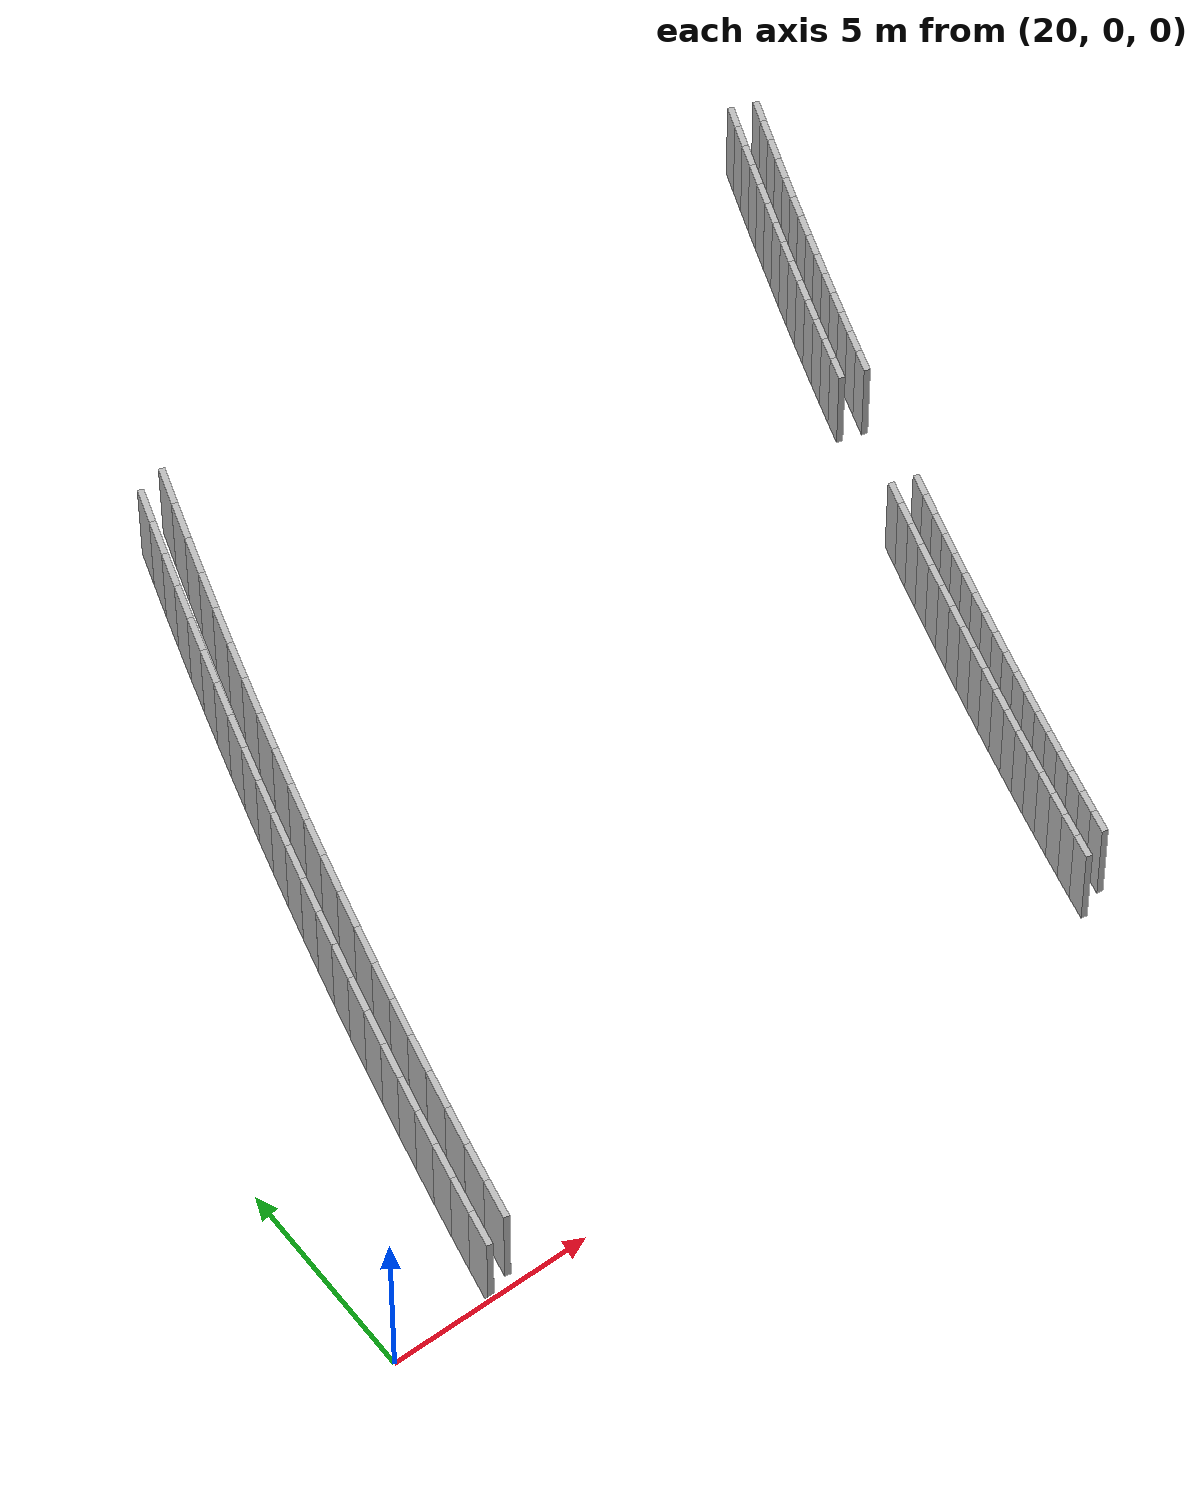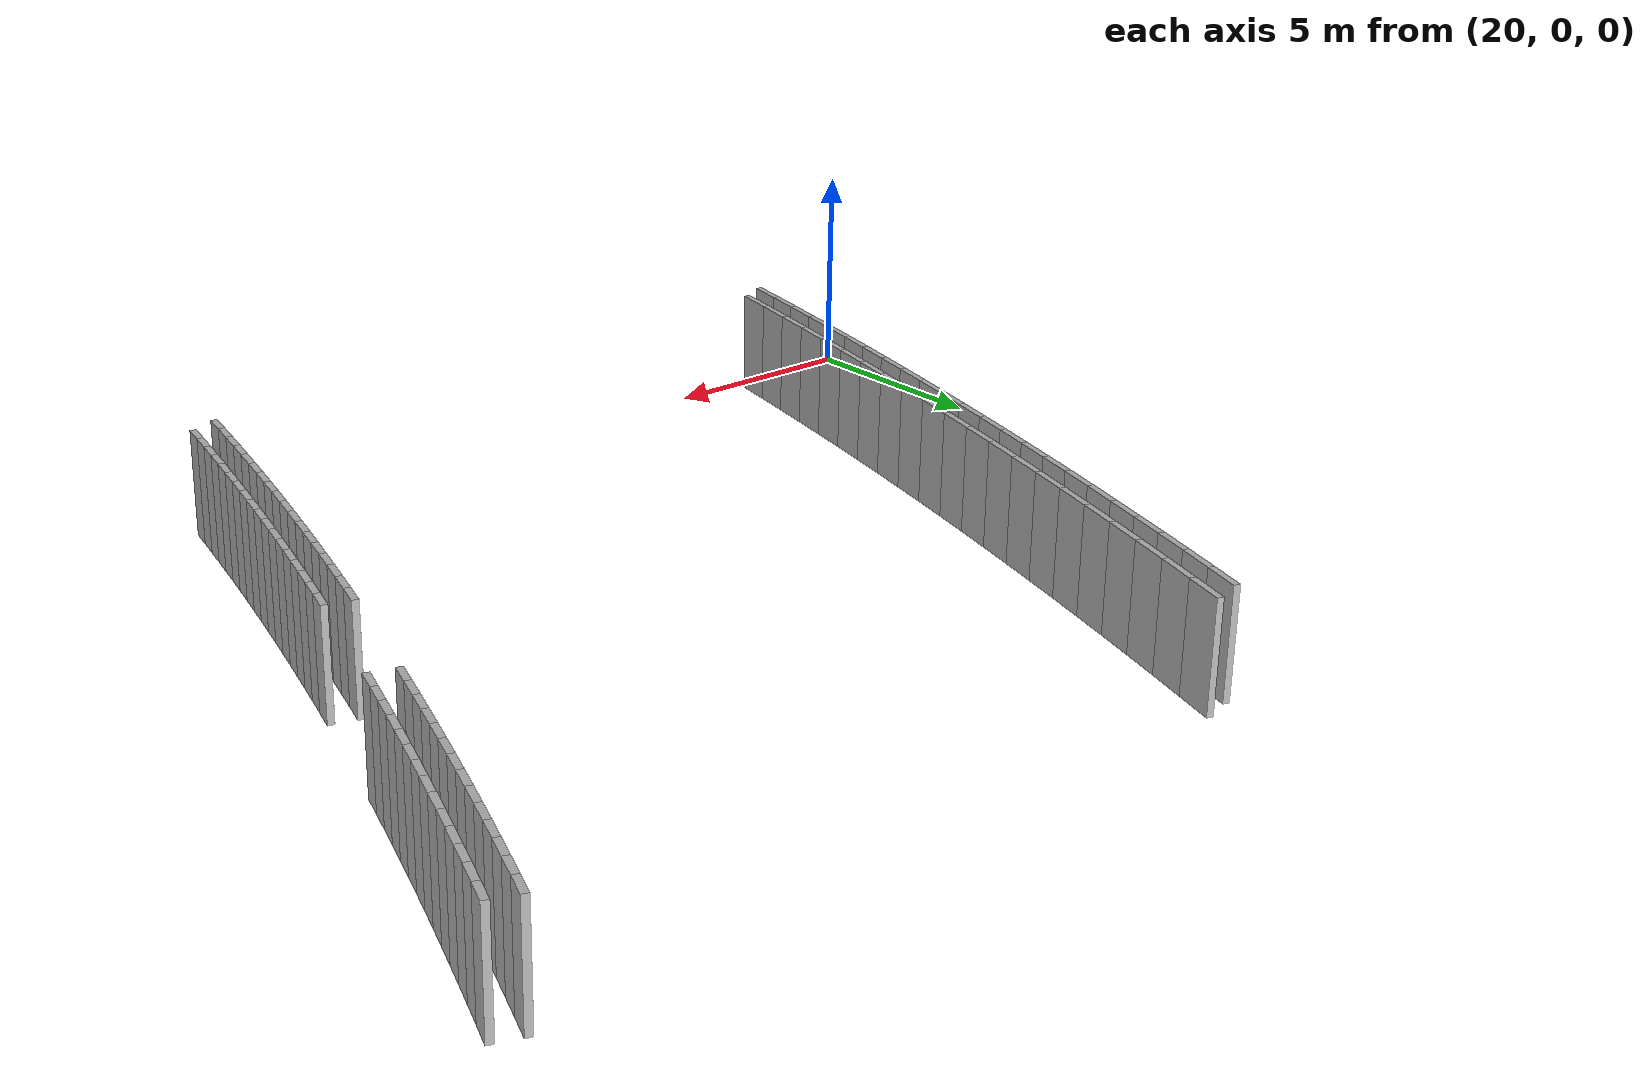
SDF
<sdf version="1.6">
 <model name="sps_0104">
  <static>1</static>
  <allow_auto_disable>0</allow_auto_disable>
  <link name="Wall6439">
   <collision name="collision"><geometry><box><size>0.560717 0.15 2.5</size></box></geometry></collision>
   <visual name="visual">
    <geometry><box><size>0.560717 0.15 2.5</size></box></geometry>
    <transparency>0.0</transparency>
   </visual>
   <pose>44.3065 20.0722 1.25 0 0 -1.92983</pose>
  </link>
  <link name="Wall6440">
   <collision name="collision"><geometry><box><size>0.561049 0.15 2.5</size></box></geometry></collision>
   <visual name="visual">
    <geometry><box><size>0.561049 0.15 2.5</size></box></geometry>
    <transparency>0.0</transparency>
   </visual>
   <pose>44.1104 19.5467 1.25 0 0 -1.92613</pose>
  </link>
  <link name="Wall6441">
   <collision name="collision"><geometry><box><size>0.560862 0.15 2.5</size></box></geometry></collision>
   <visual name="visual">
    <geometry><box><size>0.560862 0.15 2.5</size></box></geometry>
    <transparency>0.0</transparency>
   </visual>
   <pose>43.9163 19.0204 1.25 0 0 -1.92208</pose>
  </link>
  <link name="Wall6442">
   <collision name="collision"><geometry><box><size>0.560918 0.15 2.5</size></box></geometry></collision>
   <visual name="visual">
    <geometry><box><size>0.560918 0.15 2.5</size></box></geometry>
    <transparency>0.0</transparency>
   </visual>
   <pose>43.7244 18.4934 1.25 0 0 -1.91822</pose>
  </link>
  <link name="Wall6443">
   <collision name="collision"><geometry><box><size>0.561003 0.15 2.5</size></box></geometry></collision>
   <visual name="visual">
    <geometry><box><size>0.561003 0.15 2.5</size></box></geometry>
    <transparency>0.0</transparency>
   </visual>
   <pose>43.5344 17.9656 1.25 0 0 -1.91446</pose>
  </link>
  <link name="Wall6444">
   <collision name="collision"><geometry><box><size>0.560994 0.15 2.5</size></box></geometry></collision>
   <visual name="visual">
    <geometry><box><size>0.560994 0.15 2.5</size></box></geometry>
    <transparency>0.0</transparency>
   </visual>
   <pose>43.3465 17.437 1.25 0 0 -1.9102</pose>
  </link>
  <link name="Wall6445">
   <collision name="collision"><geometry><box><size>0.560923 0.15 2.5</size></box></geometry></collision>
   <visual name="visual">
    <geometry><box><size>0.560923 0.15 2.5</size></box></geometry>
    <transparency>0.0</transparency>
   </visual>
   <pose>43.1607 16.9077 1.25 0 0 -1.90655</pose>
  </link>
  <link name="Wall6446">
   <collision name="collision"><geometry><box><size>0.560953 0.15 2.5</size></box></geometry></collision>
   <visual name="visual">
    <geometry><box><size>0.560953 0.15 2.5</size></box></geometry>
    <transparency>0.0</transparency>
   </visual>
   <pose>42.977 16.3777 1.25 0 0 -1.90239</pose>
  </link>
  <link name="Wall6447">
   <collision name="collision"><geometry><box><size>0.560973 0.15 2.5</size></box></geometry></collision>
   <visual name="visual">
    <geometry><box><size>0.560973 0.15 2.5</size></box></geometry>
    <transparency>0.0</transparency>
   </visual>
   <pose>42.7955 15.8469 1.25 0 0 -1.89812</pose>
  </link>
  <link name="Wall6448">
   <collision name="collision"><geometry><box><size>0.560753 0.15 2.5</size></box></geometry></collision>
   <visual name="visual">
    <geometry><box><size>0.560753 0.15 2.5</size></box></geometry>
    <transparency>0.0</transparency>
   </visual>
   <pose>42.6161 15.3155 1.25 0 0 -1.89458</pose>
  </link>
  <link name="Wall6449">
   <collision name="collision"><geometry><box><size>0.561043 0.15 2.5</size></box></geometry></collision>
   <visual name="visual">
    <geometry><box><size>0.561043 0.15 2.5</size></box></geometry>
    <transparency>0.0</transparency>
   </visual>
   <pose>42.4387 14.7834 1.25 0 0 -1.89062</pose>
  </link>
  <link name="Wall6450">
   <collision name="collision"><geometry><box><size>0.560955 0.15 2.5</size></box></geometry></collision>
   <visual name="visual">
    <geometry><box><size>0.560955 0.15 2.5</size></box></geometry>
    <transparency>0.0</transparency>
   </visual>
   <pose>42.2634 14.2505 1.25 0 0 -1.88666</pose>
  </link>
  <link name="Wall6451">
   <collision name="collision"><geometry><box><size>0.560895 0.15 2.5</size></box></geometry></collision>
   <visual name="visual">
    <geometry><box><size>0.560895 0.15 2.5</size></box></geometry>
    <transparency>0.0</transparency>
   </visual>
   <pose>42.0901 13.717 1.25 0 0 -1.88281</pose>
  </link>
  <link name="Wall6452">
   <collision name="collision"><geometry><box><size>0.56098 0.15 2.5</size></box></geometry></collision>
   <visual name="visual">
    <geometry><box><size>0.56098 0.15 2.5</size></box></geometry>
    <transparency>0.0</transparency>
   </visual>
   <pose>41.9191 13.1828 1.25 0 0 -1.87865</pose>
  </link>
  <link name="Wall8935">
   <collision name="collision"><geometry><box><size>0.557388 0.15 2.5</size></box></geometry></collision>
   <visual name="visual">
    <geometry><box><size>0.557388 0.15 2.5</size></box></geometry>
    <transparency>0.0</transparency>
   </visual>
   <pose>41.4585 9.60307 1.25 0 0 -1.85379</pose>
  </link>
  <link name="Wall8936">
   <collision name="collision"><geometry><box><size>0.55729 0.15 2.5</size></box></geometry></collision>
   <visual name="visual">
    <geometry><box><size>0.55729 0.15 2.5</size></box></geometry>
    <transparency>0.0</transparency>
   </visual>
   <pose>41.3039 9.06758 1.25 0 0 -1.84962</pose>
  </link>
  <link name="Wall8937">
   <collision name="collision"><geometry><box><size>0.557343 0.15 2.5</size></box></geometry></collision>
   <visual name="visual">
    <geometry><box><size>0.557343 0.15 2.5</size></box></geometry>
    <transparency>0.0</transparency>
   </visual>
   <pose>41.1515 8.53151 1.25 0 0 -1.84595</pose>
  </link>
  <link name="Wall8938">
   <collision name="collision"><geometry><box><size>0.557429 0.15 2.5</size></box></geometry></collision>
   <visual name="visual">
    <geometry><box><size>0.557429 0.15 2.5</size></box></geometry>
    <transparency>0.0</transparency>
   </visual>
   <pose>41.0012 7.9948 1.25 0 0 -1.84204</pose>
  </link>
  <link name="Wall8939">
   <collision name="collision"><geometry><box><size>0.55739 0.15 2.5</size></box></geometry></collision>
   <visual name="visual">
    <geometry><box><size>0.55739 0.15 2.5</size></box></geometry>
    <transparency>0.0</transparency>
   </visual>
   <pose>40.8529 7.45747 1.25 0 0 -1.83809</pose>
  </link>
  <link name="Wall8940">
   <collision name="collision"><geometry><box><size>0.55758 0.15 2.5</size></box></geometry></collision>
   <visual name="visual">
    <geometry><box><size>0.55758 0.15 2.5</size></box></geometry>
    <transparency>0.0</transparency>
   </visual>
   <pose>40.7067 6.91948 1.25 0 0 -1.83391</pose>
  </link>
  <link name="Wall8941">
   <collision name="collision"><geometry><box><size>0.557237 0.15 2.5</size></box></geometry></collision>
   <visual name="visual">
    <geometry><box><size>0.557237 0.15 2.5</size></box></geometry>
    <transparency>0.0</transparency>
   </visual>
   <pose>40.5627 6.381 1.25 0 0 -1.83033</pose>
  </link>
  <link name="Wall8942">
   <collision name="collision"><geometry><box><size>0.557311 0.15 2.5</size></box></geometry></collision>
   <visual name="visual">
    <geometry><box><size>0.557311 0.15 2.5</size></box></geometry>
    <transparency>0.0</transparency>
   </visual>
   <pose>40.4209 5.84209 1.25 0 0 -1.82611</pose>
  </link>
  <link name="Wall8943">
   <collision name="collision"><geometry><box><size>0.557368 0.15 2.5</size></box></geometry></collision>
   <visual name="visual">
    <geometry><box><size>0.557368 0.15 2.5</size></box></geometry>
    <transparency>0.0</transparency>
   </visual>
   <pose>40.2811 5.30257 1.25 0 0 -1.82257</pose>
  </link>
  <link name="Wall8944">
   <collision name="collision"><geometry><box><size>0.557402 0.15 2.5</size></box></geometry></collision>
   <visual name="visual">
    <geometry><box><size>0.557402 0.15 2.5</size></box></geometry>
    <transparency>0.0</transparency>
   </visual>
   <pose>40.1433 4.76247 1.25 0 0 -1.81838</pose>
  </link>
  <link name="Wall8945">
   <collision name="collision"><geometry><box><size>0.557223 0.15 2.5</size></box></geometry></collision>
   <visual name="visual">
    <geometry><box><size>0.557223 0.15 2.5</size></box></geometry>
    <transparency>0.0</transparency>
   </visual>
   <pose>40.0078 4.22188 1.25 0 0 -1.81439</pose>
  </link>
  <link name="Wall8946">
   <collision name="collision"><geometry><box><size>0.55757 0.15 2.5</size></box></geometry></collision>
   <visual name="visual">
    <geometry><box><size>0.55757 0.15 2.5</size></box></geometry>
    <transparency>0.0</transparency>
   </visual>
   <pose>39.8744 3.68068 1.25 0 0 -1.81052</pose>
  </link>
  <link name="Wall8947">
   <collision name="collision"><geometry><box><size>0.557409 0.15 2.5</size></box></geometry></collision>
   <visual name="visual">
    <geometry><box><size>0.557409 0.15 2.5</size></box></geometry>
    <transparency>0.0</transparency>
   </visual>
   <pose>39.7432 3.13887 1.25 0 0 -1.80653</pose>
  </link>
  <link name="Wall8948">
   <collision name="collision"><geometry><box><size>0.557256 0.15 2.5</size></box></geometry></collision>
   <visual name="visual">
    <geometry><box><size>0.557256 0.15 2.5</size></box></geometry>
    <transparency>0.0</transparency>
   </visual>
   <pose>39.6141 2.59669 1.25 0 0 -1.80255</pose>
  </link>
  <link name="Wall8949">
   <collision name="collision"><geometry><box><size>0.557286 0.15 2.5</size></box></geometry></collision>
   <visual name="visual">
    <geometry><box><size>0.557286 0.15 2.5</size></box></geometry>
    <transparency>0.0</transparency>
   </visual>
   <pose>39.4871 2.05409 1.25 0 0 -1.79893</pose>
  </link>
  <link name="Wall8950">
   <collision name="collision"><geometry><box><size>0.557494 0.15 2.5</size></box></geometry></collision>
   <visual name="visual">
    <geometry><box><size>0.557494 0.15 2.5</size></box></geometry>
    <transparency>0.0</transparency>
   </visual>
   <pose>39.3621 1.51088 1.25 0 0 -1.79469</pose>
  </link>
  <link name="Wall8951">
   <collision name="collision"><geometry><box><size>0.557249 0.15 2.5</size></box></geometry></collision>
   <visual name="visual">
    <geometry><box><size>0.557249 0.15 2.5</size></box></geometry>
    <transparency>0.0</transparency>
   </visual>
   <pose>39.2395 0.967177 1.25 0 0 -1.79075</pose>
  </link>
  <link name="Wall8952">
   <collision name="collision"><geometry><box><size>0.557362 0.15 2.5</size></box></geometry></collision>
   <visual name="visual">
    <geometry><box><size>0.557362 0.15 2.5</size></box></geometry>
    <transparency>0.0</transparency>
   </visual>
   <pose>39.1189 0.423079 1.25 0 0 -1.78711</pose>
  </link>
  <link name="Wall8969">
   <collision name="collision"><geometry><box><size>0.557746 0.15 2.5</size></box></geometry></collision>
   <visual name="visual">
    <geometry><box><size>0.557746 0.15 2.5</size></box></geometry>
    <transparency>0.0</transparency>
   </visual>
   <pose>44.8661 19.8568 1.25 0 0 -1.92996</pose>
  </link>
  <link name="Wall8970">
   <collision name="collision"><geometry><box><size>0.557821 0.15 2.5</size></box></geometry></collision>
   <visual name="visual">
    <geometry><box><size>0.557821 0.15 2.5</size></box></geometry>
    <transparency>0.0</transparency>
   </visual>
   <pose>44.671 19.3342 1.25 0 0 -1.92594</pose>
  </link>
  <link name="Wall8971">
   <collision name="collision"><geometry><box><size>0.557718 0.15 2.5</size></box></geometry></collision>
   <visual name="visual">
    <geometry><box><size>0.557718 0.15 2.5</size></box></geometry>
    <transparency>0.0</transparency>
   </visual>
   <pose>44.478 18.8109 1.25 0 0 -1.92228</pose>
  </link>
  <link name="Wall8972">
   <collision name="collision"><geometry><box><size>0.557773 0.15 2.5</size></box></geometry></collision>
   <visual name="visual">
    <geometry><box><size>0.557773 0.15 2.5</size></box></geometry>
    <transparency>0.0</transparency>
   </visual>
   <pose>44.287 18.2869 1.25 0 0 -1.9184</pose>
  </link>
  <link name="Wall8973">
   <collision name="collision"><geometry><box><size>0.557776 0.15 2.5</size></box></geometry></collision>
   <visual name="visual">
    <geometry><box><size>0.557776 0.15 2.5</size></box></geometry>
    <transparency>0.0</transparency>
   </visual>
   <pose>44.0981 17.7621 1.25 0 0 -1.91421</pose>
  </link>
  <link name="Wall8974">
   <collision name="collision"><geometry><box><size>0.557788 0.15 2.5</size></box></geometry></collision>
   <visual name="visual">
    <geometry><box><size>0.557788 0.15 2.5</size></box></geometry>
    <transparency>0.0</transparency>
   </visual>
   <pose>43.9114 17.2365 1.25 0 0 -1.91002</pose>
  </link>
  <link name="Wall8975">
   <collision name="collision"><geometry><box><size>0.55764 0.15 2.5</size></box></geometry></collision>
   <visual name="visual">
    <geometry><box><size>0.55764 0.15 2.5</size></box></geometry>
    <transparency>0.0</transparency>
   </visual>
   <pose>43.7268 16.7102 1.25 0 0 -1.90629</pose>
  </link>
  <link name="Wall8976">
   <collision name="collision"><geometry><box><size>0.557788 0.15 2.5</size></box></geometry></collision>
   <visual name="visual">
    <geometry><box><size>0.557788 0.15 2.5</size></box></geometry>
    <transparency>0.0</transparency>
   </visual>
   <pose>43.5442 16.1832 1.25 0 0 -1.90237</pose>
  </link>
  <link name="Wall8977">
   <collision name="collision"><geometry><box><size>0.557733 0.15 2.5</size></box></geometry></collision>
   <visual name="visual">
    <geometry><box><size>0.557733 0.15 2.5</size></box></geometry>
    <transparency>0.0</transparency>
   </visual>
   <pose>43.3636 15.6555 1.25 0 0 -1.89871</pose>
  </link>
  <link name="Wall8978">
   <collision name="collision"><geometry><box><size>0.557762 0.15 2.5</size></box></geometry></collision>
   <visual name="visual">
    <geometry><box><size>0.557762 0.15 2.5</size></box></geometry>
    <transparency>0.0</transparency>
   </visual>
   <pose>43.1851 15.1271 1.25 0 0 -1.89442</pose>
  </link>
  <link name="Wall8979">
   <collision name="collision"><geometry><box><size>0.557723 0.15 2.5</size></box></geometry></collision>
   <visual name="visual">
    <geometry><box><size>0.557723 0.15 2.5</size></box></geometry>
    <transparency>0.0</transparency>
   </visual>
   <pose>43.0088 14.598 1.25 0 0 -1.89075</pose>
  </link>
  <link name="Wall8980">
   <collision name="collision"><geometry><box><size>0.557713 0.15 2.5</size></box></geometry></collision>
   <visual name="visual">
    <geometry><box><size>0.557713 0.15 2.5</size></box></geometry>
    <transparency>0.0</transparency>
   </visual>
   <pose>42.8345 14.0682 1.25 0 0 -1.88649</pose>
  </link>
  <link name="Wall8981">
   <collision name="collision"><geometry><box><size>0.557749 0.15 2.5</size></box></geometry></collision>
   <visual name="visual">
    <geometry><box><size>0.557749 0.15 2.5</size></box></geometry>
    <transparency>0.0</transparency>
   </visual>
   <pose>42.6623 13.5377 1.25 0 0 -1.88279</pose>
  </link>
  <link name="Wall8982">
   <collision name="collision"><geometry><box><size>0.557601 0.15 2.5</size></box></geometry></collision>
   <visual name="visual">
    <geometry><box><size>0.557601 0.15 2.5</size></box></geometry>
    <transparency>0.0</transparency>
   </visual>
   <pose>42.4922 13.0066 1.25 0 0 -1.87874</pose>
  </link>
  <link name="Wall24379">
   <collision name="collision"><geometry><box><size>0.894609 0.15 2.5</size></box></geometry></collision>
   <visual name="visual">
    <geometry><box><size>0.894609 0.15 2.5</size></box></geometry>
    <transparency>0.0</transparency>
   </visual>
   <pose>27.5325 19.4188 1.25 0 0 -1.88866</pose>
  </link>
  <link name="Wall24380">
   <collision name="collision"><geometry><box><size>0.894757 0.15 2.5</size></box></geometry></collision>
   <visual name="visual">
    <geometry><box><size>0.894757 0.15 2.5</size></box></geometry>
    <transparency>0.0</transparency>
   </visual>
   <pose>27.2551 18.5682 1.25 0 0 -1.88323</pose>
  </link>
  <link name="Wall24381">
   <collision name="collision"><geometry><box><size>0.894741 0.15 2.5</size></box></geometry></collision>
   <visual name="visual">
    <geometry><box><size>0.894741 0.15 2.5</size></box></geometry>
    <transparency>0.0</transparency>
   </visual>
   <pose>26.9825 17.716 1.25 0 0 -1.87758</pose>
  </link>
  <link name="Wall24382">
   <collision name="collision"><geometry><box><size>0.894641 0.15 2.5</size></box></geometry></collision>
   <visual name="visual">
    <geometry><box><size>0.894641 0.15 2.5</size></box></geometry>
    <transparency>0.0</transparency>
   </visual>
   <pose>26.7148 16.8623 1.25 0 0 -1.87175</pose>
  </link>
  <link name="Wall24383">
   <collision name="collision"><geometry><box><size>0.894683 0.15 2.5</size></box></geometry></collision>
   <visual name="visual">
    <geometry><box><size>0.894683 0.15 2.5</size></box></geometry>
    <transparency>0.0</transparency>
   </visual>
   <pose>26.452 16.0071 1.25 0 0 -1.8661</pose>
  </link>
  <link name="Wall24384">
   <collision name="collision"><geometry><box><size>0.894713 0.15 2.5</size></box></geometry></collision>
   <visual name="visual">
    <geometry><box><size>0.894713 0.15 2.5</size></box></geometry>
    <transparency>0.0</transparency>
   </visual>
   <pose>26.1941 15.1504 1.25 0 0 -1.86053</pose>
  </link>
  <link name="Wall24385">
   <collision name="collision"><geometry><box><size>0.894695 0.15 2.5</size></box></geometry></collision>
   <visual name="visual">
    <geometry><box><size>0.894695 0.15 2.5</size></box></geometry>
    <transparency>0.0</transparency>
   </visual>
   <pose>25.9408 14.2923 1.25 0 0 -1.85492</pose>
  </link>
  <link name="Wall24386">
   <collision name="collision"><geometry><box><size>0.894646 0.15 2.5</size></box></geometry></collision>
   <visual name="visual">
    <geometry><box><size>0.894646 0.15 2.5</size></box></geometry>
    <transparency>0.0</transparency>
   </visual>
   <pose>25.6925 13.4328 1.25 0 0 -1.84932</pose>
  </link>
  <link name="Wall24387">
   <collision name="collision"><geometry><box><size>0.89471 0.15 2.5</size></box></geometry></collision>
   <visual name="visual">
    <geometry><box><size>0.89471 0.15 2.5</size></box></geometry>
    <transparency>0.0</transparency>
   </visual>
   <pose>25.449 12.5719 1.25 0 0 -1.84356</pose>
  </link>
  <link name="Wall24388">
   <collision name="collision"><geometry><box><size>0.89467 0.15 2.5</size></box></geometry></collision>
   <visual name="visual">
    <geometry><box><size>0.89467 0.15 2.5</size></box></geometry>
    <transparency>0.0</transparency>
   </visual>
   <pose>25.2104 11.7096 1.25 0 0 -1.83777</pose>
  </link>
  <link name="Wall24389">
   <collision name="collision"><geometry><box><size>0.894766 0.15 2.5</size></box></geometry></collision>
   <visual name="visual">
    <geometry><box><size>0.894766 0.15 2.5</size></box></geometry>
    <transparency>0.0</transparency>
   </visual>
   <pose>24.9768 10.8459 1.25 0 0 -1.83215</pose>
  </link>
  <link name="Wall24390">
   <collision name="collision"><geometry><box><size>0.894713 0.15 2.5</size></box></geometry></collision>
   <visual name="visual">
    <geometry><box><size>0.894713 0.15 2.5</size></box></geometry>
    <transparency>0.0</transparency>
   </visual>
   <pose>24.748 9.98091 1.25 0 0 -1.8266</pose>
  </link>
  <link name="Wall24391">
   <collision name="collision"><geometry><box><size>0.89482 0.15 2.5</size></box></geometry></collision>
   <visual name="visual">
    <geometry><box><size>0.89482 0.15 2.5</size></box></geometry>
    <transparency>0.0</transparency>
   </visual>
   <pose>24.5242 9.11461 1.25 0 0 -1.82079</pose>
  </link>
  <link name="Wall24392">
   <collision name="collision"><geometry><box><size>0.894794 0.15 2.5</size></box></geometry></collision>
   <visual name="visual">
    <geometry><box><size>0.894794 0.15 2.5</size></box></geometry>
    <transparency>0.0</transparency>
   </visual>
   <pose>24.3053 8.24699 1.25 0 0 -1.8151</pose>
  </link>
  <link name="Wall24393">
   <collision name="collision"><geometry><box><size>0.894589 0.15 2.5</size></box></geometry></collision>
   <visual name="visual">
    <geometry><box><size>0.894589 0.15 2.5</size></box></geometry>
    <transparency>0.0</transparency>
   </visual>
   <pose>24.0912 7.37828 1.25 0 0 -1.8096</pose>
  </link>
  <link name="Wall24394">
   <collision name="collision"><geometry><box><size>0.894784 0.15 2.5</size></box></geometry></collision>
   <visual name="visual">
    <geometry><box><size>0.894784 0.15 2.5</size></box></geometry>
    <transparency>0.0</transparency>
   </visual>
   <pose>23.8821 6.50838 1.25 0 0 -1.8038</pose>
  </link>
  <link name="Wall24395">
   <collision name="collision"><geometry><box><size>0.894635 0.15 2.5</size></box></geometry></collision>
   <visual name="visual">
    <geometry><box><size>0.894635 0.15 2.5</size></box></geometry>
    <transparency>0.0</transparency>
   </visual>
   <pose>23.6779 5.63728 1.25 0 0 -1.7983</pose>
  </link>
  <link name="Wall24396">
   <collision name="collision"><geometry><box><size>0.89471 0.15 2.5</size></box></geometry></collision>
   <visual name="visual">
    <geometry><box><size>0.89471 0.15 2.5</size></box></geometry>
    <transparency>0.0</transparency>
   </visual>
   <pose>23.4787 4.76509 1.25 0 0 -1.79254</pose>
  </link>
  <link name="Wall24397">
   <collision name="collision"><geometry><box><size>0.894589 0.15 2.5</size></box></geometry></collision>
   <visual name="visual">
    <geometry><box><size>0.894589 0.15 2.5</size></box></geometry>
    <transparency>0.0</transparency>
   </visual>
   <pose>23.2844 3.8918 1.25 0 0 -1.78691</pose>
  </link>
  <link name="Wall24398">
   <collision name="collision"><geometry><box><size>0.894762 0.15 2.5</size></box></geometry></collision>
   <visual name="visual">
    <geometry><box><size>0.894762 0.15 2.5</size></box></geometry>
    <transparency>0.0</transparency>
   </visual>
   <pose>23.0949 3.01741 1.25 0 0 -1.78136</pose>
  </link>
  <link name="Wall24399">
   <collision name="collision"><geometry><box><size>0.894732 0.15 2.5</size></box></geometry></collision>
   <visual name="visual">
    <geometry><box><size>0.894732 0.15 2.5</size></box></geometry>
    <transparency>0.0</transparency>
   </visual>
   <pose>22.9105 2.14189 1.25 0 0 -1.77558</pose>
  </link>
  <link name="Wall24400">
   <collision name="collision"><geometry><box><size>0.894877 0.15 2.5</size></box></geometry></collision>
   <visual name="visual">
    <geometry><box><size>0.894877 0.15 2.5</size></box></geometry>
    <transparency>0.0</transparency>
   </visual>
   <pose>22.731 1.26527 1.25 0 0 -1.7699</pose>
  </link>
  <link name="Wall24401">
   <collision name="collision"><geometry><box><size>0.894679 0.15 2.5</size></box></geometry></collision>
   <visual name="visual">
    <geometry><box><size>0.894679 0.15 2.5</size></box></geometry>
    <transparency>0.0</transparency>
   </visual>
   <pose>22.5565 0.387679 1.25 0 0 -1.76425</pose>
  </link>
  <link name="Wall24420">
   <collision name="collision"><geometry><box><size>0.973486 0.15 2.5</size></box></geometry></collision>
   <visual name="visual">
    <geometry><box><size>0.973486 0.15 2.5</size></box></geometry>
    <transparency>0.0</transparency>
   </visual>
   <pose>28.2172 19.5625 1.25 0 0 -1.89098</pose>
  </link>
  <link name="Wall24421">
   <collision name="collision"><geometry><box><size>0.973534 0.15 2.5</size></box></geometry></collision>
   <visual name="visual">
    <geometry><box><size>0.973534 0.15 2.5</size></box></geometry>
    <transparency>0.0</transparency>
   </visual>
   <pose>27.9137 18.6375 1.25 0 0 -1.8847</pose>
  </link>
  <link name="Wall24422">
   <collision name="collision"><geometry><box><size>0.973211 0.15 2.5</size></box></geometry></collision>
   <visual name="visual">
    <geometry><box><size>0.973211 0.15 2.5</size></box></geometry>
    <transparency>0.0</transparency>
   </visual>
   <pose>27.616 17.7108 1.25 0 0 -1.87874</pose>
  </link>
  <link name="Wall24423">
   <collision name="collision"><geometry><box><size>0.973334 0.15 2.5</size></box></geometry></collision>
   <visual name="visual">
    <geometry><box><size>0.973334 0.15 2.5</size></box></geometry>
    <transparency>0.0</transparency>
   </visual>
   <pose>27.3239 16.7824 1.25 0 0 -1.87246</pose>
  </link>
  <link name="Wall24424">
   <collision name="collision"><geometry><box><size>0.973396 0.15 2.5</size></box></geometry></collision>
   <visual name="visual">
    <geometry><box><size>0.973396 0.15 2.5</size></box></geometry>
    <transparency>0.0</transparency>
   </visual>
   <pose>27.0376 15.8521 1.25 0 0 -1.86627</pose>
  </link>
  <link name="Wall24425">
   <collision name="collision"><geometry><box><size>0.973403 0.15 2.5</size></box></geometry></collision>
   <visual name="visual">
    <geometry><box><size>0.973403 0.15 2.5</size></box></geometry>
    <transparency>0.0</transparency>
   </visual>
   <pose>26.757 14.92 1.25 0 0 -1.85998</pose>
  </link>
  <link name="Wall24426">
   <collision name="collision"><geometry><box><size>0.973399 0.15 2.5</size></box></geometry></collision>
   <visual name="visual">
    <geometry><box><size>0.973399 0.15 2.5</size></box></geometry>
    <transparency>0.0</transparency>
   </visual>
   <pose>26.4823 13.9862 1.25 0 0 -1.85397</pose>
  </link>
  <link name="Wall24427">
   <collision name="collision"><geometry><box><size>0.973279 0.15 2.5</size></box></geometry></collision>
   <visual name="visual">
    <geometry><box><size>0.973279 0.15 2.5</size></box></geometry>
    <transparency>0.0</transparency>
   </visual>
   <pose>26.2132 13.0508 1.25 0 0 -1.84787</pose>
  </link>
  <link name="Wall24428">
   <collision name="collision"><geometry><box><size>0.973515 0.15 2.5</size></box></geometry></collision>
   <visual name="visual">
    <geometry><box><size>0.973515 0.15 2.5</size></box></geometry>
    <transparency>0.0</transparency>
   </visual>
   <pose>25.9499 12.1137 1.25 0 0 -1.84155</pose>
  </link>
  <link name="Wall24429">
   <collision name="collision"><geometry><box><size>0.973277 0.15 2.5</size></box></geometry></collision>
   <visual name="visual">
    <geometry><box><size>0.973277 0.15 2.5</size></box></geometry>
    <transparency>0.0</transparency>
   </visual>
   <pose>25.6924 11.175 1.25 0 0 -1.83544</pose>
  </link>
  <link name="Wall24430">
   <collision name="collision"><geometry><box><size>0.973456 0.15 2.5</size></box></geometry></collision>
   <visual name="visual">
    <geometry><box><size>0.973456 0.15 2.5</size></box></geometry>
    <transparency>0.0</transparency>
   </visual>
   <pose>25.4408 10.2347 1.25 0 0 -1.8291</pose>
  </link>
  <link name="Wall24431">
   <collision name="collision"><geometry><box><size>0.97344 0.15 2.5</size></box></geometry></collision>
   <visual name="visual">
    <geometry><box><size>0.97344 0.15 2.5</size></box></geometry>
    <transparency>0.0</transparency>
   </visual>
   <pose>25.1949 9.2928 1.25 0 0 -1.82307</pose>
  </link>
  <link name="Wall24432">
   <collision name="collision"><geometry><box><size>0.973266 0.15 2.5</size></box></geometry></collision>
   <visual name="visual">
    <geometry><box><size>0.973266 0.15 2.5</size></box></geometry>
    <transparency>0.0</transparency>
   </visual>
   <pose>24.9549 8.3495 1.25 0 0 -1.81678</pose>
  </link>
  <link name="Wall24433">
   <collision name="collision"><geometry><box><size>0.973515 0.15 2.5</size></box></geometry></collision>
   <visual name="visual">
    <geometry><box><size>0.973515 0.15 2.5</size></box></geometry>
    <transparency>0.0</transparency>
   </visual>
   <pose>24.7208 7.40471 1.25 0 0 -1.81077</pose>
  </link>
  <link name="Wall24434">
   <collision name="collision"><geometry><box><size>0.973239 0.15 2.5</size></box></geometry></collision>
   <visual name="visual">
    <geometry><box><size>0.973239 0.15 2.5</size></box></geometry>
    <transparency>0.0</transparency>
   </visual>
   <pose>24.4924 6.45851 1.25 0 0 -1.80452</pose>
  </link>
  <link name="Wall24435">
   <collision name="collision"><geometry><box><size>0.973476 0.15 2.5</size></box></geometry></collision>
   <visual name="visual">
    <geometry><box><size>0.973476 0.15 2.5</size></box></geometry>
    <transparency>0.0</transparency>
   </visual>
   <pose>24.27 5.51091 1.25 0 0 -1.79815</pose>
  </link>
  <link name="Wall24436">
   <collision name="collision"><geometry><box><size>0.973357 0.15 2.5</size></box></geometry></collision>
   <visual name="visual">
    <geometry><box><size>0.973357 0.15 2.5</size></box></geometry>
    <transparency>0.0</transparency>
   </visual>
   <pose>24.0533 4.5619 1.25 0 0 -1.79226</pose>
  </link>
  <link name="Wall24437">
   <collision name="collision"><geometry><box><size>0.973419 0.15 2.5</size></box></geometry></collision>
   <visual name="visual">
    <geometry><box><size>0.973419 0.15 2.5</size></box></geometry>
    <transparency>0.0</transparency>
   </visual>
   <pose>23.8426 3.61162 1.25 0 0 -1.78589</pose>
  </link>
  <link name="Wall24438">
   <collision name="collision"><geometry><box><size>0.973367 0.15 2.5</size></box></geometry></collision>
   <visual name="visual">
    <geometry><box><size>0.973367 0.15 2.5</size></box></geometry>
    <transparency>0.0</transparency>
   </visual>
   <pose>23.6377 2.66002 1.25 0 0 -1.77968</pose>
  </link>
  <link name="Wall24439">
   <collision name="collision"><geometry><box><size>0.973544 0.15 2.5</size></box></geometry></collision>
   <visual name="visual">
    <geometry><box><size>0.973544 0.15 2.5</size></box></geometry>
    <transparency>0.0</transparency>
   </visual>
   <pose>23.4388 1.70711 1.25 0 0 -1.77349</pose>
  </link>
  <link name="Wall24440">
   <collision name="collision"><geometry><box><size>0.973351 0.15 2.5</size></box></geometry></collision>
   <visual name="visual">
    <geometry><box><size>0.973351 0.15 2.5</size></box></geometry>
    <transparency>0.0</transparency>
   </visual>
   <pose>23.2457 0.753005 1.25 0 0 -1.76745</pose>
  </link>
  <link name="Wall24467">
   <collision name="collision"><geometry><box><size>0.583545 0.15 2.5</size></box></geometry></collision>
   <visual name="visual">
    <geometry><box><size>0.583545 0.15 2.5</size></box></geometry>
    <transparency>0.0</transparency>
   </visual>
   <pose>40.8884 9.7625 1.25 0 0 -1.85361</pose>
  </link>
  <link name="Wall24468">
   <collision name="collision"><geometry><box><size>0.583564 0.15 2.5</size></box></geometry></collision>
   <visual name="visual">
    <geometry><box><size>0.583564 0.15 2.5</size></box></geometry>
    <transparency>0.0</transparency>
   </visual>
   <pose>40.7267 9.2018 1.25 0 0 -1.84957</pose>
  </link>
  <link name="Wall24469">
   <collision name="collision"><geometry><box><size>0.583669 0.15 2.5</size></box></geometry></collision>
   <visual name="visual">
    <geometry><box><size>0.583669 0.15 2.5</size></box></geometry>
    <transparency>0.0</transparency>
   </visual>
   <pose>40.5673 8.6404 1.25 0 0 -1.84561</pose>
  </link>
  <link name="Wall24470">
   <collision name="collision"><geometry><box><size>0.583439 0.15 2.5</size></box></geometry></collision>
   <visual name="visual">
    <geometry><box><size>0.583439 0.15 2.5</size></box></geometry>
    <transparency>0.0</transparency>
   </visual>
   <pose>40.4101 8.07841 1.25 0 0 -1.84148</pose>
  </link>
  <link name="Wall24471">
   <collision name="collision"><geometry><box><size>0.583631 0.15 2.5</size></box></geometry></collision>
   <visual name="visual">
    <geometry><box><size>0.583631 0.15 2.5</size></box></geometry>
    <transparency>0.0</transparency>
   </visual>
   <pose>40.2552 7.51579 1.25 0 0 -1.83716</pose>
  </link>
  <link name="Wall24472">
   <collision name="collision"><geometry><box><size>0.583336 0.15 2.5</size></box></geometry></collision>
   <visual name="visual">
    <geometry><box><size>0.583336 0.15 2.5</size></box></geometry>
    <transparency>0.0</transparency>
   </visual>
   <pose>40.1027 6.95259 1.25 0 0 -1.83329</pose>
  </link>
  <link name="Wall24473">
   <collision name="collision"><geometry><box><size>0.583611 0.15 2.5</size></box></geometry></collision>
   <visual name="visual">
    <geometry><box><size>0.583611 0.15 2.5</size></box></geometry>
    <transparency>0.0</transparency>
   </visual>
   <pose>39.9524 6.38881 1.25 0 0 -1.82937</pose>
  </link>
  <link name="Wall24474">
   <collision name="collision"><geometry><box><size>0.583521 0.15 2.5</size></box></geometry></collision>
   <visual name="visual">
    <geometry><box><size>0.583521 0.15 2.5</size></box></geometry>
    <transparency>0.0</transparency>
   </visual>
   <pose>39.8046 5.82429 1.25 0 0 -1.82465</pose>
  </link>
  <link name="Wall24475">
   <collision name="collision"><geometry><box><size>0.583403 0.15 2.5</size></box></geometry></collision>
   <visual name="visual">
    <geometry><box><size>0.583403 0.15 2.5</size></box></geometry>
    <transparency>0.0</transparency>
   </visual>
   <pose>39.659 5.25929 1.25 0 0 -1.82136</pose>
  </link>
  <link name="Wall24476">
   <collision name="collision"><geometry><box><size>0.58375 0.15 2.5</size></box></geometry></collision>
   <visual name="visual">
    <geometry><box><size>0.58375 0.15 2.5</size></box></geometry>
    <transparency>0.0</transparency>
   </visual>
   <pose>39.5156 4.69359 1.25 0 0 -1.81646</pose>
  </link>
  <link name="Wall24477">
   <collision name="collision"><geometry><box><size>0.583411 0.15 2.5</size></box></geometry></collision>
   <visual name="visual">
    <geometry><box><size>0.583411 0.15 2.5</size></box></geometry>
    <transparency>0.0</transparency>
   </visual>
   <pose>39.3747 4.12727 1.25 0 0 -1.81283</pose>
  </link>
  <link name="Wall24478">
   <collision name="collision"><geometry><box><size>0.583645 0.15 2.5</size></box></geometry></collision>
   <visual name="visual">
    <geometry><box><size>0.583645 0.15 2.5</size></box></geometry>
    <transparency>0.0</transparency>
   </visual>
   <pose>39.236 3.56047 1.25 0 0 -1.80875</pose>
  </link>
  <link name="Wall24479">
   <collision name="collision"><geometry><box><size>0.583623 0.15 2.5</size></box></geometry></collision>
   <visual name="visual">
    <geometry><box><size>0.583623 0.15 2.5</size></box></geometry>
    <transparency>0.0</transparency>
   </visual>
   <pose>39.0997 2.993 1.25 0 0 -1.80456</pose>
  </link>
  <link name="Wall24480">
   <collision name="collision"><geometry><box><size>0.583374 0.15 2.5</size></box></geometry></collision>
   <visual name="visual">
    <geometry><box><size>0.583374 0.15 2.5</size></box></geometry>
    <transparency>0.0</transparency>
   </visual>
   <pose>38.9657 2.42509 1.25 0 0 -1.80047</pose>
  </link>
  <link name="Wall24481">
   <collision name="collision"><geometry><box><size>0.583536 0.15 2.5</size></box></geometry></collision>
   <visual name="visual">
    <geometry><box><size>0.583536 0.15 2.5</size></box></geometry>
    <transparency>0.0</transparency>
   </visual>
   <pose>38.8341 1.85667 1.25 0 0 -1.79611</pose>
  </link>
  <link name="Wall24482">
   <collision name="collision"><geometry><box><size>0.58348 0.15 2.5</size></box></geometry></collision>
   <visual name="visual">
    <geometry><box><size>0.58348 0.15 2.5</size></box></geometry>
    <transparency>0.0</transparency>
   </visual>
   <pose>38.7048 1.28767 1.25 0 0 -1.79238</pose>
  </link>
  <link name="Wall24483">
   <collision name="collision"><geometry><box><size>0.583703 0.15 2.5</size></box></geometry></collision>
   <visual name="visual">
    <geometry><box><size>0.583703 0.15 2.5</size></box></geometry>
    <transparency>0.0</transparency>
   </visual>
   <pose>38.5777 0.718093 1.25 0 0 -1.78833</pose>
  </link>
  <link name="Wall24484">
   <collision name="collision"><geometry><box><size>0.583671 0.15 2.5</size></box></geometry></collision>
   <visual name="visual">
    <geometry><box><size>0.583671 0.15 2.5</size></box></geometry>
    <transparency>0.0</transparency>
   </visual>
   <pose>38.4529 0.147902 1.25 0 0 -1.78417</pose>
  </link>
 </model>
</sdf>
